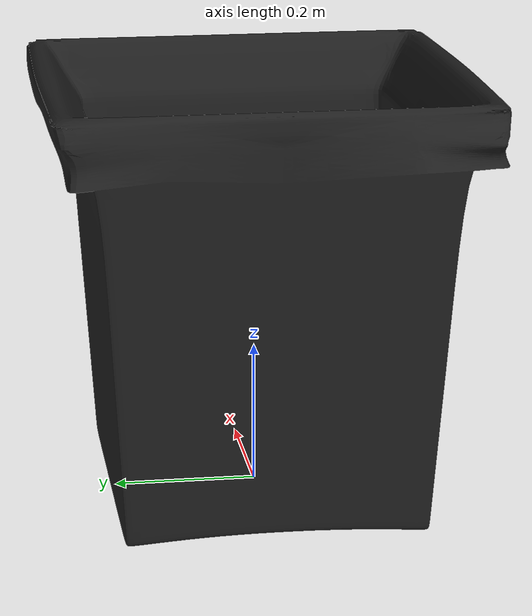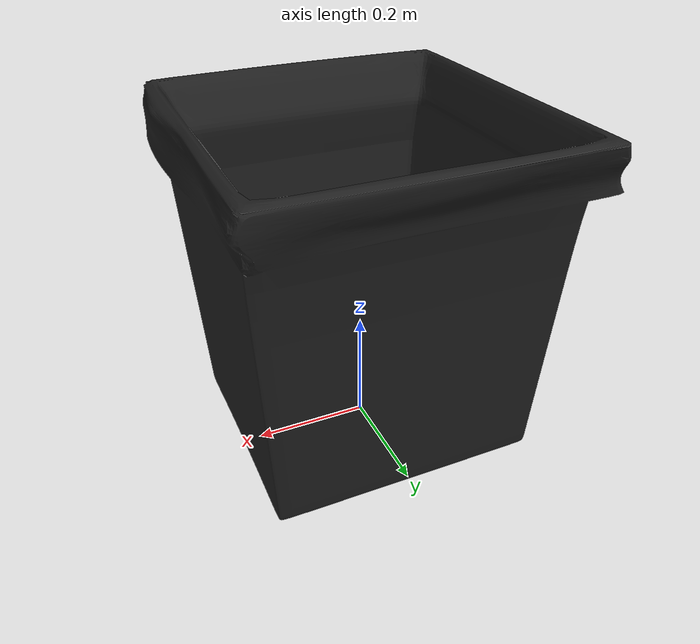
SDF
<?xml version="1.0" ?>
<sdf version='1.4'>
  <model name="rubbish_bin">
      <static>0</static>
      <link name='link'>
        <inertial>
          <mass>0.25</mass>
          <inertia>
            <ixx>0.00015</ixx>
            <ixy>0.000000</ixy>
            <ixz>0.000000</ixz>
            <iyy>0.00015</iyy>
            <iyz>0.000000</iyz>
            <izz>0.00015</izz>
          </inertia>
        </inertial>
        <collision name='collision'>
          <geometry>
            <mesh>
              <uri>model://rubbish_bin/meshes/p_bin_rig_clean_scaled_normals_v2.stl</uri>
              <scale>1 1 1</scale>
            </mesh>
          </geometry>
          <surface>
            <friction>
              <ode>
                <mu>30.0</mu>
                <mu2>30.0</mu2>
              </ode>
            </friction>
            <contact>
              <ode>
                <kp>1000000.0</kp>
                <kd>100.0</kd>
                <max_vel>1.0</max_vel>
                <min_depth>0.002</min_depth>
              </ode>
            </contact>
          </surface>
        </collision>
        <visual name='visual'>
          <geometry>
            <mesh>
              <uri>model://rubbish_bin/meshes/p_bin_rig_clean_scaled_normals_v2.stl</uri>
              <scale>1 1 1</scale>
            </mesh>
          </geometry>
          <material>
            <script>
              <uri>file://media/materials/scripts/gazebo.material</uri>
              <name>Gazebo/Black</name>
            </script>
          </material>
        </visual>
        <velocity_decay>
          <linear>0.000000</linear>
          <angular>0.000000</angular>
        </velocity_decay>
        <self_collide>0</self_collide>
        <kinematic>0</kinematic>
        <gravity>1</gravity>
      </link>
  </model>
</sdf>
